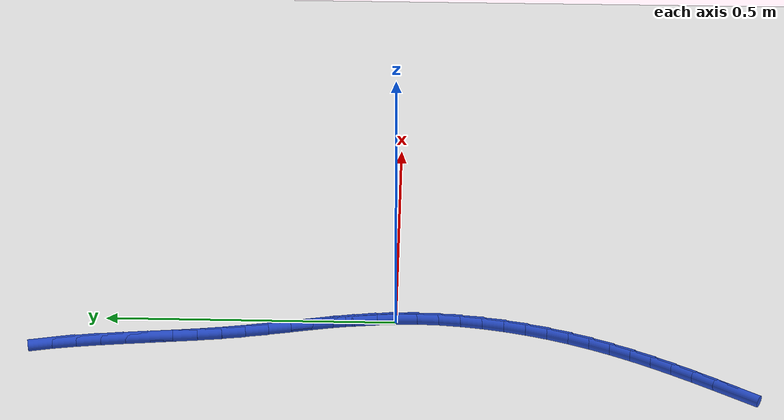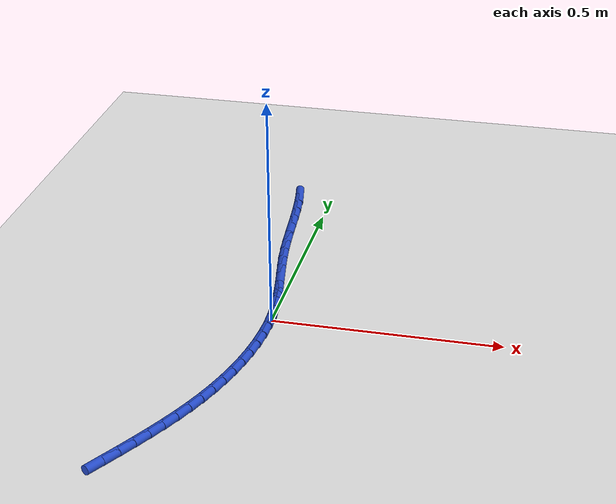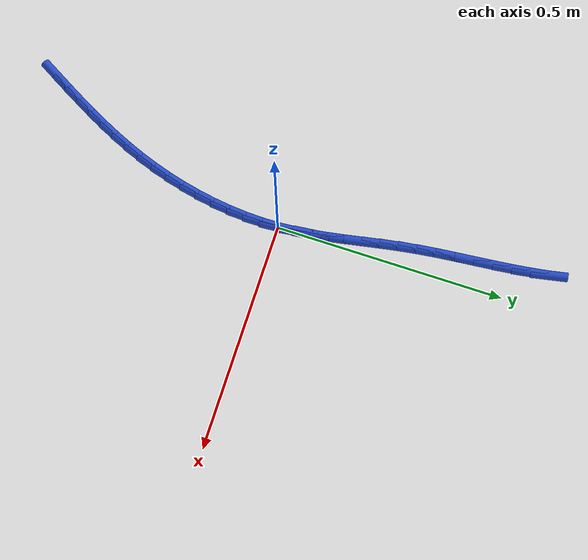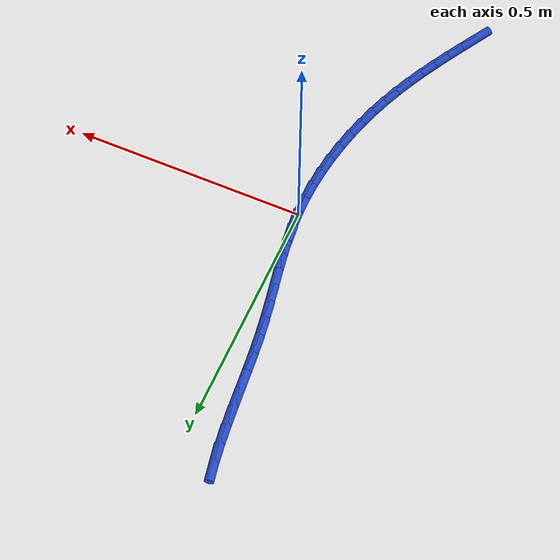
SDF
<sdf version="1.6">
 <world name="default">
  <model name="ground_plane">
   <static>1</static>
   <link name="link">
    <collision name="collision">
     <geometry><plane><normal>0 0 1</normal><size>100 100</size></plane></geometry>
     <surface><friction><ode><mu>100</mu><mu2>50</mu2></ode></friction></surface>
    </collision>
    <visual name="visual">
     <cast_shadows>0</cast_shadows>
     <geometry><plane><normal>0 0 1</normal><size>100 100</size></plane></geometry>
     <material>
      <script><uri>file://media/materials/scripts/gazebo.material</uri><name>Gazebo/WhiteGlow</name></script>
     </material>
    </visual>
   </link>
  </model>
  <model name="line">
   <link name="link_0">
    <pose>-1.5612511283791264e-17 3.469446951953614e-17 0.01 0 1.57 -1.5016999985194608</pose>
    <collision name="collision">
     <geometry><cylinder><radius>0.01</radius><length>0.08</length></cylinder></geometry>
    </collision>
    <visual name="visual">
     <material>
      <script><name>Gazebo/Blue</name><uri>file://media/materials/scripts/gazebo.material</uri></script>
     </material>
     <geometry><cylinder><radius>0.01</radius><length>0.08</length></cylinder></geometry>
    </visual>
   </link>
   <link name="link_1">
    <pose>-0.002526843220174752 0.03651164537867711 0.01 0 1.57 -1.4563035895130598</pose>
    <collision name="collision">
     <geometry><cylinder><radius>0.01</radius><length>0.08</length></cylinder></geometry>
    </collision>
    <visual name="visual">
     <material>
      <script><name>Gazebo/Blue</name><uri>file://media/materials/scripts/gazebo.material</uri></script>
     </material>
     <geometry><cylinder><radius>0.01</radius><length>0.08</length></cylinder></geometry>
    </visual>
   </link>
   <link name="link_2">
    <pose>-0.006690340870274246 0.07271734109803088 0.01 0 1.57 -1.4219347301383096</pose>
    <collision name="collision">
     <geometry><cylinder><radius>0.01</radius><length>0.08</length></cylinder></geometry>
    </collision>
    <visual name="visual">
     <material>
      <script><name>Gazebo/Blue</name><uri>file://media/materials/scripts/gazebo.material</uri></script>
     </material>
     <geometry><cylinder><radius>0.01</radius><length>0.08</length></cylinder></geometry>
    </visual>
   </link>
   <link name="link_3">
    <pose>-0.012106982899735195 0.10883526804570957 0.01 0 1.57 -1.3990817266237026</pose>
    <collision name="collision">
     <geometry><cylinder><radius>0.01</radius><length>0.08</length></cylinder></geometry>
    </collision>
    <visual name="visual">
     <material>
      <script><name>Gazebo/Blue</name><uri>file://media/materials/scripts/gazebo.material</uri></script>
     </material>
     <geometry><cylinder><radius>0.01</radius><length>0.08</length></cylinder></geometry>
    </visual>
   </link>
   <link name="link_4">
    <pose>-0.018393259257994274 0.14508360710936144 0.01 0 1.57 -1.3878125602143352</pose>
    <collision name="collision">
     <geometry><cylinder><radius>0.01</radius><length>0.08</length></cylinder></geometry>
    </collision>
    <visual name="visual">
     <material>
      <script><name>Gazebo/Blue</name><uri>file://media/materials/scripts/gazebo.material</uri></script>
     </material>
     <geometry><cylinder><radius>0.01</radius><length>0.08</length></cylinder></geometry>
    </visual>
   </link>
   <link name="link_5">
    <pose>-0.025165659894488185 0.18168053917663468 0.01 0 1.57 -1.387871604505753</pose>
    <collision name="collision">
     <geometry><cylinder><radius>0.01</radius><length>0.08</length></cylinder></geometry>
    </collision>
    <visual name="visual">
     <material>
      <script><name>Gazebo/Blue</name><uri>file://media/materials/scripts/gazebo.material</uri></script>
     </material>
     <geometry><cylinder><radius>0.01</radius><length>0.08</length></cylinder></geometry>
    </visual>
   </link>
   <link name="link_6">
    <pose>-0.03204067475865362 0.21884424513517758 0.01 0 1.57 -1.3987499802710017</pose>
    <collision name="collision">
     <geometry><cylinder><radius>0.01</radius><length>0.08</length></cylinder></geometry>
    </collision>
    <visual name="visual">
     <material>
      <script><name>Gazebo/Blue</name><uri>file://media/materials/scripts/gazebo.material</uri></script>
     </material>
     <geometry><cylinder><radius>0.01</radius><length>0.08</length></cylinder></geometry>
    </visual>
   </link>
   <link name="link_7">
    <pose>-0.03863479379992725 0.25679290587263837 0.01 0 1.57 -1.4197240757113372</pose>
    <collision name="collision">
     <geometry><cylinder><radius>0.01</radius><length>0.08</length></cylinder></geometry>
    </collision>
    <visual name="visual">
     <material>
      <script><name>Gazebo/Blue</name><uri>file://media/materials/scripts/gazebo.material</uri></script>
     </material>
     <geometry><cylinder><radius>0.01</radius><length>0.08</length></cylinder></geometry>
    </visual>
   </link>
   <link name="link_8">
    <pose>-0.04456450887442466 0.29574470076258474 0.01 0 1.57 -1.4463464657182925</pose>
    <collision name="collision">
     <geometry><cylinder><radius>0.01</radius><length>0.08</length></cylinder></geometry>
    </collision>
    <visual name="visual">
     <material>
      <script><name>Gazebo/Blue</name><uri>file://media/materials/scripts/gazebo.material</uri></script>
     </material>
     <geometry><cylinder><radius>0.01</radius><length>0.08</length></cylinder></geometry>
    </visual>
   </link>
   <link name="link_9">
    <pose>-0.04957703255089371 0.33581400476692475 0.01 0 1.57 -1.4654200131653208</pose>
    <collision name="collision">
     <geometry><cylinder><radius>0.01</radius><length>0.08</length></cylinder></geometry>
    </collision>
    <visual name="visual">
     <material>
      <script><name>Gazebo/Blue</name><uri>file://media/materials/scripts/gazebo.material</uri></script>
     </material>
     <geometry><cylinder><radius>0.01</radius><length>0.08</length></cylinder></geometry>
    </visual>
   </link>
   <link name="link_10">
    <pose>-0.05390464015703279 0.3767300078734568 0.01 0 1.57 -1.4747831557251565</pose>
    <collision name="collision">
     <geometry><cylinder><radius>0.01</radius><length>0.08</length></cylinder></geometry>
    </collision>
    <visual name="visual">
     <material>
      <script><name>Gazebo/Blue</name><uri>file://media/materials/scripts/gazebo.material</uri></script>
     </material>
     <geometry><cylinder><radius>0.01</radius><length>0.08</length></cylinder></geometry>
    </visual>
   </link>
   <link name="link_11">
    <pose>-0.0578920923860259 0.4181325762210687 0.01 0 1.57 -1.4749637945693326</pose>
    <collision name="collision">
     <geometry><cylinder><radius>0.01</radius><length>0.08</length></cylinder></geometry>
    </collision>
    <visual name="visual">
     <material>
      <script><name>Gazebo/Blue</name><uri>file://media/materials/scripts/gazebo.material</uri></script>
     </material>
     <geometry><cylinder><radius>0.01</radius><length>0.08</length></cylinder></geometry>
    </visual>
   </link>
   <link name="link_12">
    <pose>-0.061884149931057175 0.459661575948649 0.01 0 1.57 -1.4660499159993419</pose>
    <collision name="collision">
     <geometry><cylinder><radius>0.01</radius><length>0.08</length></cylinder></geometry>
    </collision>
    <visual name="visual">
     <material>
      <script><name>Gazebo/Blue</name><uri>file://media/materials/scripts/gazebo.material</uri></script>
     </material>
     <geometry><cylinder><radius>0.01</radius><length>0.08</length></cylinder></geometry>
    </visual>
   </link>
   <link name="link_13">
    <pose>-0.06622557348531065 0.5009568731950858 0.01 0 1.57 -1.4477026723787587</pose>
    <collision name="collision">
     <geometry><cylinder><radius>0.01</radius><length>0.08</length></cylinder></geometry>
    </collision>
    <visual name="visual">
     <material>
      <script><name>Gazebo/Blue</name><uri>file://media/materials/scripts/gazebo.material</uri></script>
     </material>
     <geometry><cylinder><radius>0.01</radius><length>0.08</length></cylinder></geometry>
    </visual>
   </link>
   <link name="link_14">
    <pose>-0.07126112374197045 0.5416583340992676 0.01 0 1.57 -1.4191440212636472</pose>
    <collision name="collision">
     <geometry><cylinder><radius>0.01</radius><length>0.08</length></cylinder></geometry>
    </collision>
    <visual name="visual">
     <material>
      <script><name>Gazebo/Blue</name><uri>file://media/materials/scripts/gazebo.material</uri></script>
     </material>
     <geometry><cylinder><radius>0.01</radius><length>0.08</length></cylinder></geometry>
    </visual>
   </link>
   <link name="link_15">
    <pose>-0.07733556139422057 0.581405824800082 0.01 0 1.57 -1.379126228854976</pose>
    <collision name="collision">
     <geometry><cylinder><radius>0.01</radius><length>0.08</length></cylinder></geometry>
    </collision>
    <visual name="visual">
     <material>
      <script><name>Gazebo/Blue</name><uri>file://media/materials/scripts/gazebo.material</uri></script>
     </material>
     <geometry><cylinder><radius>0.01</radius><length>0.08</length></cylinder></geometry>
    </visual>
   </link>
   <link name="link_194">
    <pose>-0.17474735118684603 -0.5650191533282245 0.01 0 1.57 1.0489506213347657</pose>
    <collision name="collision">
     <geometry><cylinder><radius>0.01</radius><length>0.08</length></cylinder></geometry>
    </collision>
    <visual name="visual">
     <material>
      <script><name>Gazebo/Blue</name><uri>file://media/materials/scripts/gazebo.material</uri></script>
     </material>
     <geometry><cylinder><radius>0.01</radius><length>0.08</length></cylinder></geometry>
    </visual>
   </link>
   <link name="link_195">
    <pose>-0.15537150931193944 -0.5313229279727318 0.01 0 1.57 1.0604548653093517</pose>
    <collision name="collision">
     <geometry><cylinder><radius>0.01</radius><length>0.08</length></cylinder></geometry>
    </collision>
    <visual name="visual">
     <material>
      <script><name>Gazebo/Blue</name><uri>file://media/materials/scripts/gazebo.material</uri></script>
     </material>
     <geometry><cylinder><radius>0.01</radius><length>0.08</length></cylinder></geometry>
    </visual>
   </link>
   <link name="link_196">
    <pose>-0.13670964988495649 -0.4979866958546273 0.01 0 1.57 1.0766861995838939</pose>
    <collision name="collision">
     <geometry><cylinder><radius>0.01</radius><length>0.08</length></cylinder></geometry>
    </collision>
    <visual name="visual">
     <material>
      <script><name>Gazebo/Blue</name><uri>file://media/materials/scripts/gazebo.material</uri></script>
     </material>
     <geometry><cylinder><radius>0.01</radius><length>0.08</length></cylinder></geometry>
    </visual>
   </link>
   <link name="link_197">
    <pose>-0.11885090480510696 -0.46483385917619163 0.01 0 1.57 1.0976971923382042</pose>
    <collision name="collision">
     <geometry><cylinder><radius>0.01</radius><length>0.08</length></cylinder></geometry>
    </collision>
    <visual name="visual">
     <material>
      <script><name>Gazebo/Blue</name><uri>file://media/materials/scripts/gazebo.material</uri></script>
     </material>
     <geometry><cylinder><radius>0.01</radius><length>0.08</length></cylinder></geometry>
    </visual>
   </link>
   <link name="link_198">
    <pose>-0.10188440859227432 -0.4316878108926694 0.01 0 1.57 1.123435012407209</pose>
    <collision name="collision">
     <geometry><cylinder><radius>0.01</radius><length>0.08</length></cylinder></geometry>
    </collision>
    <visual name="visual">
     <material>
      <script><name>Gazebo/Blue</name><uri>file://media/materials/scripts/gazebo.material</uri></script>
     </material>
     <geometry><cylinder><radius>0.01</radius><length>0.08</length></cylinder></geometry>
    </visual>
   </link>
   <link name="link_199">
    <pose>-0.08589929576634274 -0.39837194395930614 0.01 0 1.57 1.1537242149407756</pose>
    <collision name="collision">
     <geometry><cylinder><radius>0.01</radius><length>0.08</length></cylinder></geometry>
    </collision>
    <visual name="visual">
     <material>
      <script><name>Gazebo/Blue</name><uri>file://media/materials/scripts/gazebo.material</uri></script>
     </material>
     <geometry><cylinder><radius>0.01</radius><length>0.08</length></cylinder></geometry>
    </visual>
   </link>
   <link name="link_200">
    <pose>-0.07098470084719631 -0.3647096513313476 0.01 0 1.57 1.1882537257758599</pose>
    <collision name="collision">
     <geometry><cylinder><radius>0.01</radius><length>0.08</length></cylinder></geometry>
    </collision>
    <visual name="visual">
     <material>
      <script><name>Gazebo/Blue</name><uri>file://media/materials/scripts/gazebo.material</uri></script>
     </material>
     <geometry><cylinder><radius>0.01</radius><length>0.08</length></cylinder></geometry>
    </visual>
   </link>
   <link name="link_201">
    <pose>-0.05722975835471905 -0.3305243259640389 0.01 0 1.57 1.2265719376334794</pose>
    <collision name="collision">
     <geometry><cylinder><radius>0.01</radius><length>0.08</length></cylinder></geometry>
    </collision>
    <visual name="visual">
     <material>
      <script><name>Gazebo/Blue</name><uri>file://media/materials/scripts/gazebo.material</uri></script>
     </material>
     <geometry><cylinder><radius>0.01</radius><length>0.08</length></cylinder></geometry>
    </visual>
   </link>
   <link name="link_202">
    <pose>-0.04472360280879486 -0.29563936081262515 0.01 0 1.57 1.2676441111378403</pose>
    <collision name="collision">
     <geometry><cylinder><radius>0.01</radius><length>0.08</length></cylinder></geometry>
    </collision>
    <visual name="visual">
     <material>
      <script><name>Gazebo/Blue</name><uri>file://media/materials/scripts/gazebo.material</uri></script>
     </material>
     <geometry><cylinder><radius>0.01</radius><length>0.08</length></cylinder></geometry>
    </visual>
   </link>
   <link name="link_203">
    <pose>-0.03355477156654917 -0.25993263430302493 0.01 0 1.57 1.3093044395940765</pose>
    <collision name="collision">
     <geometry><cylinder><radius>0.01</radius><length>0.08</length></cylinder></geometry>
    </collision>
    <visual name="visual">
     <material>
      <script><name>Gazebo/Blue</name><uri>file://media/materials/scripts/gazebo.material</uri></script>
     </material>
     <geometry><cylinder><radius>0.01</radius><length>0.08</length></cylinder></geometry>
    </visual>
   </link>
   <link name="link_204">
    <pose>-0.023809226881987368 -0.22351697873815488 0.01 0 1.57 1.3514510663377013</pose>
    <collision name="collision">
     <geometry><cylinder><radius>0.01</radius><length>0.08</length></cylinder></geometry>
    </collision>
    <visual name="visual">
     <material>
      <script><name>Gazebo/Blue</name><uri>file://media/materials/scripts/gazebo.material</uri></script>
     </material>
     <geometry><cylinder><radius>0.01</radius><length>0.08</length></cylinder></geometry>
    </visual>
   </link>
   <link name="link_205">
    <pose>-0.015572237038471921 -0.1865685446981462 0.01 0 1.57 1.3945668332709011</pose>
    <collision name="collision">
     <geometry><cylinder><radius>0.01</radius><length>0.08</length></cylinder></geometry>
    </collision>
    <visual name="visual">
     <material>
      <script><name>Gazebo/Blue</name><uri>file://media/materials/scripts/gazebo.material</uri></script>
     </material>
     <geometry><cylinder><radius>0.01</radius><length>0.08</length></cylinder></geometry>
    </visual>
   </link>
   <link name="link_206">
    <pose>-0.008929070309243121 -0.149263483686684 0.01 0 1.57 1.4391359736639415</pose>
    <collision name="collision">
     <geometry><cylinder><radius>0.01</radius><length>0.08</length></cylinder></geometry>
    </collision>
    <visual name="visual">
     <material>
      <script><name>Gazebo/Blue</name><uri>file://media/materials/scripts/gazebo.material</uri></script>
     </material>
     <geometry><cylinder><radius>0.01</radius><length>0.08</length></cylinder></geometry>
    </visual>
   </link>
   <link name="link_207">
    <pose>-0.0039649949675412514 -0.11177794720745325 0.01 0 1.57 1.4856538358840454</pose>
    <collision name="collision">
     <geometry><cylinder><radius>0.01</radius><length>0.08</length></cylinder></geometry>
    </collision>
    <visual name="visual">
     <material>
      <script><name>Gazebo/Blue</name><uri>file://media/materials/scripts/gazebo.material</uri></script>
     </material>
     <geometry><cylinder><radius>0.01</radius><length>0.08</length></cylinder></geometry>
    </visual>
   </link>
   <link name="link_208">
    <pose>-0.0007652792866065837 -0.07428808676413898 0.01 0 1.57 1.5346342065586764</pose>
    <collision name="collision">
     <geometry><cylinder><radius>0.01</radius><length>0.08</length></cylinder></geometry>
    </collision>
    <visual name="visual">
     <material>
      <script><name>Gazebo/Blue</name><uri>file://media/materials/scripts/gazebo.material</uri></script>
     </material>
     <geometry><cylinder><radius>0.01</radius><length>0.08</length></cylinder></geometry>
    </visual>
   </link>
   <link name="link_209">
    <pose>0.0005848084603205968 -0.03697005386042532 0.01 0 1.57 -1.5549792091798622</pose>
    <collision name="collision">
     <geometry><cylinder><radius>0.01</radius><length>0.08</length></cylinder></geometry>
    </collision>
    <visual name="visual">
     <material>
      <script><name>Gazebo/Blue</name><uri>file://media/materials/scripts/gazebo.material</uri></script>
     </material>
     <geometry><cylinder><radius>0.01</radius><length>0.08</length></cylinder></geometry>
    </visual>
   </link>
   <link name="link_210">
    <pose>-1.214306433183765e-17 9.71445146547012e-17 0.01 0 1.57 -1.4994426536544962</pose>
    <collision name="collision">
     <geometry><cylinder><radius>0.01</radius><length>0.08</length></cylinder></geometry>
    </collision>
    <visual name="visual">
     <material>
      <script><name>Gazebo/Blue</name><uri>file://media/materials/scripts/gazebo.material</uri></script>
     </material>
     <geometry><cylinder><radius>0.01</radius><length>0.08</length></cylinder></geometry>
    </visual>
   </link>
   <link name="link_211">
    <pose>-0.0026049729408086676 0.03644592331345481 0.01 0 1.57 -1.4397755645542927</pose>
    <collision name="collision">
     <geometry><cylinder><radius>0.01</radius><length>0.08</length></cylinder></geometry>
    </collision>
    <visual name="visual">
     <material>
      <script><name>Gazebo/Blue</name><uri>file://media/materials/scripts/gazebo.material</uri></script>
     </material>
     <geometry><cylinder><radius>0.01</radius><length>0.08</length></cylinder></geometry>
    </visual>
   </link>
   <link name="link_212">
    <pose>-0.007315378635345935 0.07219156457625464 0.01 0 1.57 -1.469808173094138</pose>
    <collision name="collision">
     <geometry><cylinder><radius>0.01</radius><length>0.08</length></cylinder></geometry>
    </collision>
    <visual name="visual">
     <material>
      <script><name>Gazebo/Blue</name><uri>file://media/materials/scripts/gazebo.material</uri></script>
     </material>
     <geometry><cylinder><radius>0.01</radius><length>0.08</length></cylinder></geometry>
    </visual>
   </link>
  </model>
 </world>
</sdf>
